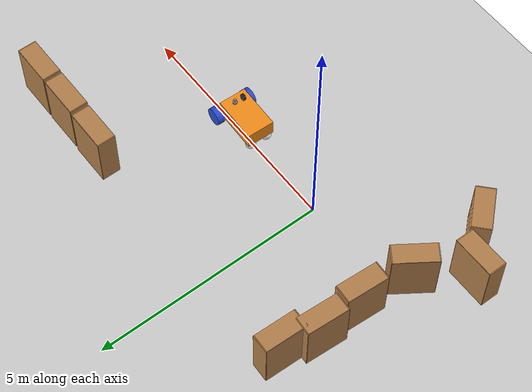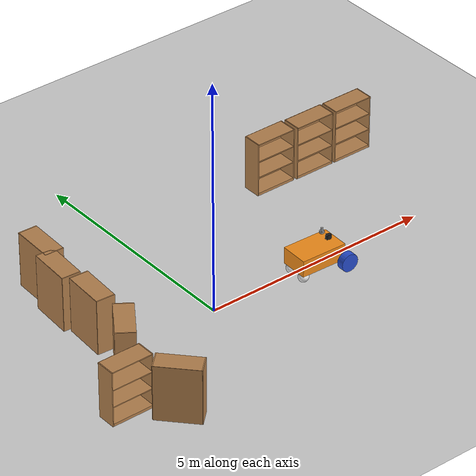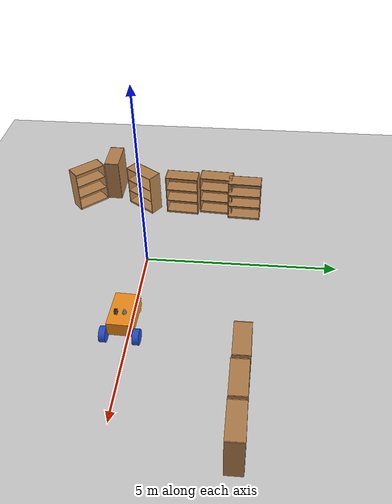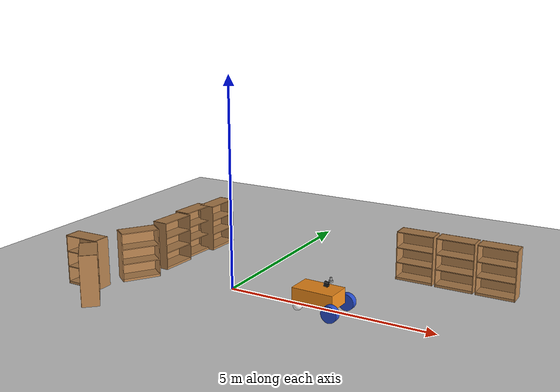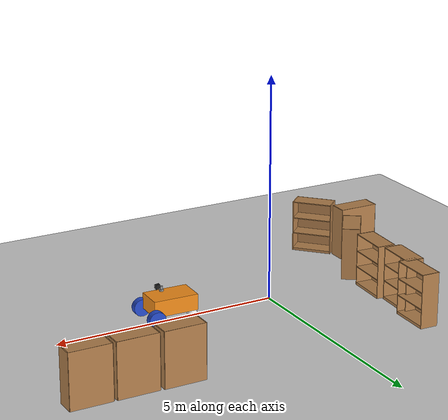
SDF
<sdf version="1.7">
 <world name="default">
  <light name="sun" type="directional">
   <pose>0 0 10 0 -0 0</pose>
   <diffuse>0.8 0.8 0.8 1</diffuse>
   <specular>0.2 0.2 0.2 1</specular>
   <attenuation>
    <range>1000</range>
    <constant>0.9</constant>
    <linear>0.01</linear>
    <quadratic>0.001</quadratic>
   </attenuation>
   <direction>-0.5 0.1 -0.9</direction>
   <spot><inner_angle>0</inner_angle><outer_angle>0</outer_angle><falloff>0</falloff></spot>
  </light>
  <model name="ground_plane">
   <static>1</static>
   <link name="link">
    <collision name="collision">
     <geometry><plane><normal>0 0 1</normal><size>100 100</size></plane></geometry>
     <surface>
      <contact><collide_bitmask>65535</collide_bitmask></contact>
      <friction><ode><mu>100</mu><mu2>50</mu2></ode></friction>
     </surface>
    </collision>
    <visual name="visual">
     <cast_shadows>0</cast_shadows>
     <geometry><plane><normal>0 0 1</normal><size>100 100</size></plane></geometry>
     <material>
      <script><uri>file://media/materials/scripts/gazebo.material</uri><name>Gazebo/Grey</name></script>
     </material>
    </visual>
   </link>
  </model>
  <gravity>0 0 -9.8</gravity>
  <magnetic_field>6e-06 2.3e-05 -4.2e-05</magnetic_field>
  <atmosphere type="adiabatic"/>
  <physics type="ode">
   <max_step_size>0.001</max_step_size>
   <real_time_factor>1</real_time_factor>
   <real_time_update_rate>1000</real_time_update_rate>
  </physics>
  <scene><ambient>0.4 0.4 0.4 1</ambient><background>0.7 0.7 0.7 1</background><shadows>1</shadows></scene>
  <audio><device>default</device></audio>
  <spherical_coordinates>
   <surface_model>EARTH_WGS84</surface_model>
   <latitude_deg>0</latitude_deg>
   <longitude_deg>0</longitude_deg>
   <elevation>0</elevation>
   <heading_deg>0</heading_deg>
  </spherical_coordinates>
  <model name="my_bot">
   <link name="base_link">
    <inertial>
     <pose>-0.799122 0.002329 -0.16546 0 -0 0</pose>
     <mass>4.293</mass>
     <inertia>
      <ixx>0.249458</ixx>
      <ixy>-0.00549122</ixy>
      <ixz>-0.110719</ixz>
      <iyy>0.348442</iyy>
      <iyz>-0.0052546</iyz>
      <izz>0.401025</izz>
     </inertia>
    </inertial>
    <collision name="base_link_fixed_joint_lump__caster_wheel1_collision">
     <pose>-0.91 0.1875 -0.24 0 -0 0</pose>
     <geometry><sphere><radius>0.11</radius></sphere></geometry>
     <surface><friction><ode><mu>0.001</mu><mu2>0.001</mu2></ode></friction></surface>
    </collision>
    <collision name="base_link_fixed_joint_lump__caster_wheel2_collision_1">
     <pose>-0.91 -0.1875 -0.24 0 -0 0</pose>
     <geometry><sphere><radius>0.11</radius></sphere></geometry>
     <surface><friction><ode><mu>0.001</mu><mu2>0.001</mu2></ode></friction></surface>
    </collision>
    <collision name="base_link_fixed_joint_lump__chassis_collision_2">
     <pose>-0.5 0 0.02 0 -0 0</pose>
     <geometry><box><size>1 0.6 0.36</size></box></geometry>
    </collision>
    <collision name="base_link_fixed_joint_lump__laser_frame_collision_3">
     <pose>-0.25 0.1 0.36 0 -0 3.14159</pose>
     <geometry><cylinder><length>0.04</length><radius>0.05</radius></cylinder></geometry>
    </collision>
    <visual name="base_link_fixed_joint_lump__caster_wheel1_visual">
     <pose>-0.91 0.1875 -0.24 0 -0 0</pose>
     <geometry><sphere><radius>0.11</radius></sphere></geometry>
     <material>
      <script><name>Gazebo/White</name><uri>file://media/materials/scripts/gazebo.material</uri></script>
     </material>
    </visual>
    <visual name="base_link_fixed_joint_lump__caster_wheel2_visual_1">
     <pose>-0.91 -0.1875 -0.24 0 -0 0</pose>
     <geometry><sphere><radius>0.11</radius></sphere></geometry>
     <material>
      <script><name>Gazebo/White</name><uri>file://media/materials/scripts/gazebo.material</uri></script>
     </material>
    </visual>
    <visual name="base_link_fixed_joint_lump__chassis_visual_2">
     <pose>-0.5 0 0.02 0 -0 0</pose>
     <geometry><box><size>1 0.6 0.36</size></box></geometry>
     <material>
      <script><name>Gazebo/Orange</name><uri>file://media/materials/scripts/gazebo.material</uri></script>
     </material>
    </visual>
    <visual name="base_link_fixed_joint_lump__camera_link_visual_3">
     <pose>-0.25 -0.1 0.36 0 0.15708 0</pose>
     <geometry><box><size>0.1 0.07 0.1</size></box></geometry>
     <material>
      <script><name>Gazebo/Black</name><uri>file://media/materials/scripts/gazebo.material</uri></script>
     </material>
    </visual>
    <visual name="base_link_fixed_joint_lump__camera_link_visual_4">
     <pose>-0.200616 -0.1 0.352178 3.14159 1.41372 3.14159</pose>
     <geometry><cylinder><length>0.03</length><radius>0.02</radius></cylinder></geometry>
     <material>
      <script><name>Gazebo/Black</name><uri>file://media/materials/scripts/gazebo.material</uri></script>
     </material>
    </visual>
    <visual name="base_link_fixed_joint_lump__laser_frame_visual_5">
     <pose>-0.25 0.1 0.36 0 -0 3.14159</pose>
     <geometry><cylinder><length>0.04</length><radius>0.05</radius></cylinder></geometry>
     <material>
      <script><name>Gazebo/Gray</name><uri>file://media/materials/scripts/gazebo.material</uri></script>
     </material>
    </visual>
    <visual name="base_link_fixed_joint_lump__laser_frame_visual_6">
     <pose>-0.25 0.1 0.4 0 -0 3.14159</pose>
     <geometry><cylinder><length>0.1</length><radius>0.025</radius></cylinder></geometry>
     <material>
      <script><name>Gazebo/Gray</name><uri>file://media/materials/scripts/gazebo.material</uri></script>
     </material>
    </visual>
    <sensor name="camera" type="camera">
     <visualize>1</visualize>
     <update_rate>10</update_rate>
     <camera>
      <horizontal_fov>1.089</horizontal_fov>
      <image><format>R8G8B8</format><width>640</width><height>480</height></image>
      <clip><near>0.05</near><far>8</far></clip>
     </camera>
     <plugin name="camera_controller" filename="libgazebo_ros_camera.so">
      <frame_name>camera_link_optical</frame_name>
      <camera_name>sim_camera</camera_name>
      <topic>image_raw</topic>
     </plugin>
     <pose>-0.25 -0.1 0.36 0 0.15708 0</pose>
    </sensor>
    <sensor name="laser" type="ray">
     <visualize>1</visualize>
     <update_rate>10</update_rate>
     <ray>
      <scan>
       <horizontal>
        <samples>360</samples>
        <min_angle>-3.14</min_angle>
        <max_angle>3.14</max_angle>
        <resolution>1</resolution>
       </horizontal>
       <vertical><samples>1</samples><min_angle>0</min_angle><max_angle>0</max_angle></vertical>
      </scan>
      <range><min>0.3</min><max>12</max></range>
     </ray>
     <plugin name="laser_controller" filename="libgazebo_ros_ray_sensor.so">
      <ros><argument>~/out:=scan</argument></ros>
      <output_type>sensor_msgs/LaserScan</output_type>
      <frame_name>laser_frame</frame_name>
     </plugin>
     <pose>-0.25 0.1 0.36 0 -0 3.14159</pose>
    </sensor>
   </link>
   <joint name="left_wheel_joint" type="revolute">
    <pose relative_to="base_link">0 -0.39 -0.16 -1.5708 0 0</pose>
    <parent>base_link</parent>
    <child>left_wheel</child>
    <axis>
     <xyz>0 0 1</xyz>
     <limit><lower>-1e+16</lower><upper>1e+16</upper></limit>
     <dynamics><spring_reference>0</spring_reference><spring_stiffness>0</spring_stiffness></dynamics>
    </axis>
   </joint>
   <link name="left_wheel">
    <pose relative_to="left_wheel_joint">0 0 0 0 -0 0</pose>
    <inertial>
     <mass>3.17</mass>
     <inertia>
      <ixx>0.034553</ixx>
      <ixy>0</ixy>
      <ixz>0</ixz>
      <iyy>0.034553</iyy>
      <iyz>0</iyz>
      <izz>0.0572185</izz>
     </inertia>
    </inertial>
    <collision name="left_wheel_collision">
     <geometry><cylinder><length>0.15</length><radius>0.19</radius></cylinder></geometry>
    </collision>
    <visual name="left_wheel_visual">
     <geometry><cylinder><length>0.15</length><radius>0.19</radius></cylinder></geometry>
     <material>
      <script><name>Gazebo/Blue</name><uri>file://media/materials/scripts/gazebo.material</uri></script>
     </material>
    </visual>
   </link>
   <joint name="right_wheel_joint" type="revolute">
    <pose relative_to="base_link">0 0.39 -0.16 1.5708 -0 0</pose>
    <parent>base_link</parent>
    <child>right_wheel</child>
    <axis>
     <xyz>0 0 -1</xyz>
     <limit><lower>-1e+16</lower><upper>1e+16</upper></limit>
     <dynamics><spring_reference>0</spring_reference><spring_stiffness>0</spring_stiffness></dynamics>
    </axis>
   </joint>
   <link name="right_wheel">
    <pose relative_to="right_wheel_joint">0 0 0 0 -0 0</pose>
    <inertial>
     <mass>3.17</mass>
     <inertia>
      <ixx>0.034553</ixx>
      <ixy>0</ixy>
      <ixz>0</ixz>
      <iyy>0.034553</iyy>
      <iyz>0</iyz>
      <izz>0.0572185</izz>
     </inertia>
    </inertial>
    <collision name="right_wheel_collision">
     <geometry><cylinder><length>0.15</length><radius>0.19</radius></cylinder></geometry>
    </collision>
    <visual name="right_wheel_visual">
     <geometry><cylinder><length>0.15</length><radius>0.19</radius></cylinder></geometry>
     <material>
      <script><name>Gazebo/Blue</name><uri>file://media/materials/scripts/gazebo.material</uri></script>
     </material>
    </visual>
   </link>
   <static>0</static>
   <plugin name="gazebo_ros2_control" filename="libgazebo_ros2_control.so">
    <parameters>/home/dion/dev_ws/install/articubot_one/share/articubot_one/config/my_controllers.yaml</parameters>
    <parameters>/home/dion/dev_ws/install/articubot_one/share/articubot_one/config/gaz_ros2_ctl_use_sim.yaml</parameters>
   </plugin>
   <pose>2.83557 -0.156018 0.35 0 -1.1e-05 -0.03382</pose>
  </model>
  <model name="bookshelf">
   <static>1</static>
   <link name="link">
    <inertial><mass>1</mass></inertial>
    <collision name="back">
     <pose>0 0.005 0.6 0 -0 0</pose>
     <geometry><box><size>0.9 0.01 1.2</size></box></geometry>
    </collision>
    <visual name="visual1">
     <pose>0 0.005 0.6 0 -0 0</pose>
     <geometry><box><size>0.9 0.01 1.2</size></box></geometry>
     <material>
      <script><uri>file://media/materials/scripts/gazebo.material</uri><name>Gazebo/Wood</name></script>
     </material>
    </visual>
    <collision name="left_side">
     <pose>0.45 -0.195 0.6 0 -0 0</pose>
     <geometry><box><size>0.02 0.4 1.2</size></box></geometry>
    </collision>
    <visual name="visual2">
     <pose>0.45 -0.195 0.6 0 -0 0</pose>
     <geometry><box><size>0.02 0.4 1.2</size></box></geometry>
     <material>
      <script><uri>file://media/materials/scripts/gazebo.material</uri><name>Gazebo/Wood</name></script>
     </material>
    </visual>
    <collision name="right_side">
     <pose>-0.45 -0.195 0.6 0 -0 0</pose>
     <geometry><box><size>0.02 0.4 1.2</size></box></geometry>
    </collision>
    <visual name="visual3">
     <pose>-0.45 -0.195 0.6 0 -0 0</pose>
     <geometry><box><size>0.02 0.4 1.2</size></box></geometry>
     <material>
      <script><uri>file://media/materials/scripts/gazebo.material</uri><name>Gazebo/Wood</name></script>
     </material>
    </visual>
    <collision name="bottom">
     <pose>0 -0.195 0.03 0 -0 0</pose>
     <geometry><box><size>0.88 0.4 0.06</size></box></geometry>
    </collision>
    <visual name="visual4">
     <pose>0 -0.195 0.03 0 -0 0</pose>
     <geometry><box><size>0.88 0.4 0.06</size></box></geometry>
     <material>
      <script><uri>file://media/materials/scripts/gazebo.material</uri><name>Gazebo/Wood</name></script>
     </material>
    </visual>
    <collision name="top">
     <pose>0 -0.195 1.19 0 -0 0</pose>
     <geometry><box><size>0.88 0.4 0.02</size></box></geometry>
    </collision>
    <visual name="visual5">
     <pose>0 -0.195 1.19 0 -0 0</pose>
     <geometry><box><size>0.88 0.4 0.02</size></box></geometry>
     <material>
      <script><uri>file://media/materials/scripts/gazebo.material</uri><name>Gazebo/Wood</name></script>
     </material>
    </visual>
    <collision name="low_shelf">
     <pose>0 -0.195 0.43 0 -0 0</pose>
     <geometry><box><size>0.88 0.4 0.02</size></box></geometry>
    </collision>
    <visual name="visual6">
     <pose>0 -0.195 0.43 0 -0 0</pose>
     <geometry><box><size>0.88 0.4 0.02</size></box></geometry>
     <material>
      <script><uri>file://media/materials/scripts/gazebo.material</uri><name>Gazebo/Wood</name></script>
     </material>
    </visual>
    <collision name="high_shelf">
     <pose>0 -0.195 0.8 0 -0 0</pose>
     <geometry><box><size>0.88 0.4 0.02</size></box></geometry>
    </collision>
    <visual name="visual7">
     <pose>0 -0.195 0.8 0 -0 0</pose>
     <geometry><box><size>0.88 0.4 0.02</size></box></geometry>
     <material>
      <script><uri>file://media/materials/scripts/gazebo.material</uri><name>Gazebo/Wood</name></script>
     </material>
    </visual>
   </link>
   <pose>3.53383 2.86106 0 0 -0 0</pose>
  </model>
  <model name="bookshelf_0">
   <static>1</static>
   <link name="link">
    <inertial><mass>1</mass></inertial>
    <collision name="back">
     <pose>0 0.005 0.6 0 -0 0</pose>
     <geometry><box><size>0.9 0.01 1.2</size></box></geometry>
    </collision>
    <visual name="visual1">
     <pose>0 0.005 0.6 0 -0 0</pose>
     <geometry><box><size>0.9 0.01 1.2</size></box></geometry>
     <material>
      <script><uri>file://media/materials/scripts/gazebo.material</uri><name>Gazebo/Wood</name></script>
     </material>
    </visual>
    <collision name="left_side">
     <pose>0.45 -0.195 0.6 0 -0 0</pose>
     <geometry><box><size>0.02 0.4 1.2</size></box></geometry>
    </collision>
    <visual name="visual2">
     <pose>0.45 -0.195 0.6 0 -0 0</pose>
     <geometry><box><size>0.02 0.4 1.2</size></box></geometry>
     <material>
      <script><uri>file://media/materials/scripts/gazebo.material</uri><name>Gazebo/Wood</name></script>
     </material>
    </visual>
    <collision name="right_side">
     <pose>-0.45 -0.195 0.6 0 -0 0</pose>
     <geometry><box><size>0.02 0.4 1.2</size></box></geometry>
    </collision>
    <visual name="visual3">
     <pose>-0.45 -0.195 0.6 0 -0 0</pose>
     <geometry><box><size>0.02 0.4 1.2</size></box></geometry>
     <material>
      <script><uri>file://media/materials/scripts/gazebo.material</uri><name>Gazebo/Wood</name></script>
     </material>
    </visual>
    <collision name="bottom">
     <pose>0 -0.195 0.03 0 -0 0</pose>
     <geometry><box><size>0.88 0.4 0.06</size></box></geometry>
    </collision>
    <visual name="visual4">
     <pose>0 -0.195 0.03 0 -0 0</pose>
     <geometry><box><size>0.88 0.4 0.06</size></box></geometry>
     <material>
      <script><uri>file://media/materials/scripts/gazebo.material</uri><name>Gazebo/Wood</name></script>
     </material>
    </visual>
    <collision name="top">
     <pose>0 -0.195 1.19 0 -0 0</pose>
     <geometry><box><size>0.88 0.4 0.02</size></box></geometry>
    </collision>
    <visual name="visual5">
     <pose>0 -0.195 1.19 0 -0 0</pose>
     <geometry><box><size>0.88 0.4 0.02</size></box></geometry>
     <material>
      <script><uri>file://media/materials/scripts/gazebo.material</uri><name>Gazebo/Wood</name></script>
     </material>
    </visual>
    <collision name="low_shelf">
     <pose>0 -0.195 0.43 0 -0 0</pose>
     <geometry><box><size>0.88 0.4 0.02</size></box></geometry>
    </collision>
    <visual name="visual6">
     <pose>0 -0.195 0.43 0 -0 0</pose>
     <geometry><box><size>0.88 0.4 0.02</size></box></geometry>
     <material>
      <script><uri>file://media/materials/scripts/gazebo.material</uri><name>Gazebo/Wood</name></script>
     </material>
    </visual>
    <collision name="high_shelf">
     <pose>0 -0.195 0.8 0 -0 0</pose>
     <geometry><box><size>0.88 0.4 0.02</size></box></geometry>
    </collision>
    <visual name="visual7">
     <pose>0 -0.195 0.8 0 -0 0</pose>
     <geometry><box><size>0.88 0.4 0.02</size></box></geometry>
     <material>
      <script><uri>file://media/materials/scripts/gazebo.material</uri><name>Gazebo/Wood</name></script>
     </material>
    </visual>
   </link>
   <pose>4.51781 2.84364 0 0 -0 0</pose>
  </model>
  <model name="bookshelf_1">
   <static>1</static>
   <link name="link">
    <inertial><mass>1</mass></inertial>
    <collision name="back">
     <pose>0 0.005 0.6 0 -0 0</pose>
     <geometry><box><size>0.9 0.01 1.2</size></box></geometry>
    </collision>
    <visual name="visual1">
     <pose>0 0.005 0.6 0 -0 0</pose>
     <geometry><box><size>0.9 0.01 1.2</size></box></geometry>
     <material>
      <script><uri>file://media/materials/scripts/gazebo.material</uri><name>Gazebo/Wood</name></script>
     </material>
    </visual>
    <collision name="left_side">
     <pose>0.45 -0.195 0.6 0 -0 0</pose>
     <geometry><box><size>0.02 0.4 1.2</size></box></geometry>
    </collision>
    <visual name="visual2">
     <pose>0.45 -0.195 0.6 0 -0 0</pose>
     <geometry><box><size>0.02 0.4 1.2</size></box></geometry>
     <material>
      <script><uri>file://media/materials/scripts/gazebo.material</uri><name>Gazebo/Wood</name></script>
     </material>
    </visual>
    <collision name="right_side">
     <pose>-0.45 -0.195 0.6 0 -0 0</pose>
     <geometry><box><size>0.02 0.4 1.2</size></box></geometry>
    </collision>
    <visual name="visual3">
     <pose>-0.45 -0.195 0.6 0 -0 0</pose>
     <geometry><box><size>0.02 0.4 1.2</size></box></geometry>
     <material>
      <script><uri>file://media/materials/scripts/gazebo.material</uri><name>Gazebo/Wood</name></script>
     </material>
    </visual>
    <collision name="bottom">
     <pose>0 -0.195 0.03 0 -0 0</pose>
     <geometry><box><size>0.88 0.4 0.06</size></box></geometry>
    </collision>
    <visual name="visual4">
     <pose>0 -0.195 0.03 0 -0 0</pose>
     <geometry><box><size>0.88 0.4 0.06</size></box></geometry>
     <material>
      <script><uri>file://media/materials/scripts/gazebo.material</uri><name>Gazebo/Wood</name></script>
     </material>
    </visual>
    <collision name="top">
     <pose>0 -0.195 1.19 0 -0 0</pose>
     <geometry><box><size>0.88 0.4 0.02</size></box></geometry>
    </collision>
    <visual name="visual5">
     <pose>0 -0.195 1.19 0 -0 0</pose>
     <geometry><box><size>0.88 0.4 0.02</size></box></geometry>
     <material>
      <script><uri>file://media/materials/scripts/gazebo.material</uri><name>Gazebo/Wood</name></script>
     </material>
    </visual>
    <collision name="low_shelf">
     <pose>0 -0.195 0.43 0 -0 0</pose>
     <geometry><box><size>0.88 0.4 0.02</size></box></geometry>
    </collision>
    <visual name="visual6">
     <pose>0 -0.195 0.43 0 -0 0</pose>
     <geometry><box><size>0.88 0.4 0.02</size></box></geometry>
     <material>
      <script><uri>file://media/materials/scripts/gazebo.material</uri><name>Gazebo/Wood</name></script>
     </material>
    </visual>
    <collision name="high_shelf">
     <pose>0 -0.195 0.8 0 -0 0</pose>
     <geometry><box><size>0.88 0.4 0.02</size></box></geometry>
    </collision>
    <visual name="visual7">
     <pose>0 -0.195 0.8 0 -0 0</pose>
     <geometry><box><size>0.88 0.4 0.02</size></box></geometry>
     <material>
      <script><uri>file://media/materials/scripts/gazebo.material</uri><name>Gazebo/Wood</name></script>
     </material>
    </visual>
   </link>
   <pose>5.48931 2.8378 0 0 -0 0</pose>
  </model>
  <model name="bookshelf_2">
   <static>1</static>
   <link name="link">
    <inertial><mass>1</mass></inertial>
    <collision name="back">
     <pose>0 0.005 0.6 0 -0 0</pose>
     <geometry><box><size>0.9 0.01 1.2</size></box></geometry>
    </collision>
    <visual name="visual1">
     <pose>0 0.005 0.6 0 -0 0</pose>
     <geometry><box><size>0.9 0.01 1.2</size></box></geometry>
     <material>
      <script><uri>file://media/materials/scripts/gazebo.material</uri><name>Gazebo/Wood</name></script>
     </material>
    </visual>
    <collision name="left_side">
     <pose>0.45 -0.195 0.6 0 -0 0</pose>
     <geometry><box><size>0.02 0.4 1.2</size></box></geometry>
    </collision>
    <visual name="visual2">
     <pose>0.45 -0.195 0.6 0 -0 0</pose>
     <geometry><box><size>0.02 0.4 1.2</size></box></geometry>
     <material>
      <script><uri>file://media/materials/scripts/gazebo.material</uri><name>Gazebo/Wood</name></script>
     </material>
    </visual>
    <collision name="right_side">
     <pose>-0.45 -0.195 0.6 0 -0 0</pose>
     <geometry><box><size>0.02 0.4 1.2</size></box></geometry>
    </collision>
    <visual name="visual3">
     <pose>-0.45 -0.195 0.6 0 -0 0</pose>
     <geometry><box><size>0.02 0.4 1.2</size></box></geometry>
     <material>
      <script><uri>file://media/materials/scripts/gazebo.material</uri><name>Gazebo/Wood</name></script>
     </material>
    </visual>
    <collision name="bottom">
     <pose>0 -0.195 0.03 0 -0 0</pose>
     <geometry><box><size>0.88 0.4 0.06</size></box></geometry>
    </collision>
    <visual name="visual4">
     <pose>0 -0.195 0.03 0 -0 0</pose>
     <geometry><box><size>0.88 0.4 0.06</size></box></geometry>
     <material>
      <script><uri>file://media/materials/scripts/gazebo.material</uri><name>Gazebo/Wood</name></script>
     </material>
    </visual>
    <collision name="top">
     <pose>0 -0.195 1.19 0 -0 0</pose>
     <geometry><box><size>0.88 0.4 0.02</size></box></geometry>
    </collision>
    <visual name="visual5">
     <pose>0 -0.195 1.19 0 -0 0</pose>
     <geometry><box><size>0.88 0.4 0.02</size></box></geometry>
     <material>
      <script><uri>file://media/materials/scripts/gazebo.material</uri><name>Gazebo/Wood</name></script>
     </material>
    </visual>
    <collision name="low_shelf">
     <pose>0 -0.195 0.43 0 -0 0</pose>
     <geometry><box><size>0.88 0.4 0.02</size></box></geometry>
    </collision>
    <visual name="visual6">
     <pose>0 -0.195 0.43 0 -0 0</pose>
     <geometry><box><size>0.88 0.4 0.02</size></box></geometry>
     <material>
      <script><uri>file://media/materials/scripts/gazebo.material</uri><name>Gazebo/Wood</name></script>
     </material>
    </visual>
    <collision name="high_shelf">
     <pose>0 -0.195 0.8 0 -0 0</pose>
     <geometry><box><size>0.88 0.4 0.02</size></box></geometry>
    </collision>
    <visual name="visual7">
     <pose>0 -0.195 0.8 0 -0 0</pose>
     <geometry><box><size>0.88 0.4 0.02</size></box></geometry>
     <material>
      <script><uri>file://media/materials/scripts/gazebo.material</uri><name>Gazebo/Wood</name></script>
     </material>
    </visual>
   </link>
   <pose>-2.3333 2.4926 0 0 -0 1.53434</pose>
  </model>
  <model name="bookshelf_3">
   <static>1</static>
   <link name="link">
    <inertial><mass>1</mass></inertial>
    <collision name="back">
     <pose>0 0.005 0.6 0 -0 0</pose>
     <geometry><box><size>0.9 0.01 1.2</size></box></geometry>
    </collision>
    <visual name="visual1">
     <pose>0 0.005 0.6 0 -0 0</pose>
     <geometry><box><size>0.9 0.01 1.2</size></box></geometry>
     <material>
      <script><uri>file://media/materials/scripts/gazebo.material</uri><name>Gazebo/Wood</name></script>
     </material>
    </visual>
    <collision name="left_side">
     <pose>0.45 -0.195 0.6 0 -0 0</pose>
     <geometry><box><size>0.02 0.4 1.2</size></box></geometry>
    </collision>
    <visual name="visual2">
     <pose>0.45 -0.195 0.6 0 -0 0</pose>
     <geometry><box><size>0.02 0.4 1.2</size></box></geometry>
     <material>
      <script><uri>file://media/materials/scripts/gazebo.material</uri><name>Gazebo/Wood</name></script>
     </material>
    </visual>
    <collision name="right_side">
     <pose>-0.45 -0.195 0.6 0 -0 0</pose>
     <geometry><box><size>0.02 0.4 1.2</size></box></geometry>
    </collision>
    <visual name="visual3">
     <pose>-0.45 -0.195 0.6 0 -0 0</pose>
     <geometry><box><size>0.02 0.4 1.2</size></box></geometry>
     <material>
      <script><uri>file://media/materials/scripts/gazebo.material</uri><name>Gazebo/Wood</name></script>
     </material>
    </visual>
    <collision name="bottom">
     <pose>0 -0.195 0.03 0 -0 0</pose>
     <geometry><box><size>0.88 0.4 0.06</size></box></geometry>
    </collision>
    <visual name="visual4">
     <pose>0 -0.195 0.03 0 -0 0</pose>
     <geometry><box><size>0.88 0.4 0.06</size></box></geometry>
     <material>
      <script><uri>file://media/materials/scripts/gazebo.material</uri><name>Gazebo/Wood</name></script>
     </material>
    </visual>
    <collision name="top">
     <pose>0 -0.195 1.19 0 -0 0</pose>
     <geometry><box><size>0.88 0.4 0.02</size></box></geometry>
    </collision>
    <visual name="visual5">
     <pose>0 -0.195 1.19 0 -0 0</pose>
     <geometry><box><size>0.88 0.4 0.02</size></box></geometry>
     <material>
      <script><uri>file://media/materials/scripts/gazebo.material</uri><name>Gazebo/Wood</name></script>
     </material>
    </visual>
    <collision name="low_shelf">
     <pose>0 -0.195 0.43 0 -0 0</pose>
     <geometry><box><size>0.88 0.4 0.02</size></box></geometry>
    </collision>
    <visual name="visual6">
     <pose>0 -0.195 0.43 0 -0 0</pose>
     <geometry><box><size>0.88 0.4 0.02</size></box></geometry>
     <material>
      <script><uri>file://media/materials/scripts/gazebo.material</uri><name>Gazebo/Wood</name></script>
     </material>
    </visual>
    <collision name="high_shelf">
     <pose>0 -0.195 0.8 0 -0 0</pose>
     <geometry><box><size>0.88 0.4 0.02</size></box></geometry>
    </collision>
    <visual name="visual7">
     <pose>0 -0.195 0.8 0 -0 0</pose>
     <geometry><box><size>0.88 0.4 0.02</size></box></geometry>
     <material>
      <script><uri>file://media/materials/scripts/gazebo.material</uri><name>Gazebo/Wood</name></script>
     </material>
    </visual>
   </link>
   <pose>-2.52593 1.69276 0 0 -0 1.50582</pose>
  </model>
  <model name="bookshelf_4">
   <static>1</static>
   <link name="link">
    <inertial><mass>1</mass></inertial>
    <collision name="back">
     <pose>0 0.005 0.6 0 -0 0</pose>
     <geometry><box><size>0.9 0.01 1.2</size></box></geometry>
    </collision>
    <visual name="visual1">
     <pose>0 0.005 0.6 0 -0 0</pose>
     <geometry><box><size>0.9 0.01 1.2</size></box></geometry>
     <material>
      <script><uri>file://media/materials/scripts/gazebo.material</uri><name>Gazebo/Wood</name></script>
     </material>
    </visual>
    <collision name="left_side">
     <pose>0.45 -0.195 0.6 0 -0 0</pose>
     <geometry><box><size>0.02 0.4 1.2</size></box></geometry>
    </collision>
    <visual name="visual2">
     <pose>0.45 -0.195 0.6 0 -0 0</pose>
     <geometry><box><size>0.02 0.4 1.2</size></box></geometry>
     <material>
      <script><uri>file://media/materials/scripts/gazebo.material</uri><name>Gazebo/Wood</name></script>
     </material>
    </visual>
    <collision name="right_side">
     <pose>-0.45 -0.195 0.6 0 -0 0</pose>
     <geometry><box><size>0.02 0.4 1.2</size></box></geometry>
    </collision>
    <visual name="visual3">
     <pose>-0.45 -0.195 0.6 0 -0 0</pose>
     <geometry><box><size>0.02 0.4 1.2</size></box></geometry>
     <material>
      <script><uri>file://media/materials/scripts/gazebo.material</uri><name>Gazebo/Wood</name></script>
     </material>
    </visual>
    <collision name="bottom">
     <pose>0 -0.195 0.03 0 -0 0</pose>
     <geometry><box><size>0.88 0.4 0.06</size></box></geometry>
    </collision>
    <visual name="visual4">
     <pose>0 -0.195 0.03 0 -0 0</pose>
     <geometry><box><size>0.88 0.4 0.06</size></box></geometry>
     <material>
      <script><uri>file://media/materials/scripts/gazebo.material</uri><name>Gazebo/Wood</name></script>
     </material>
    </visual>
    <collision name="top">
     <pose>0 -0.195 1.19 0 -0 0</pose>
     <geometry><box><size>0.88 0.4 0.02</size></box></geometry>
    </collision>
    <visual name="visual5">
     <pose>0 -0.195 1.19 0 -0 0</pose>
     <geometry><box><size>0.88 0.4 0.02</size></box></geometry>
     <material>
      <script><uri>file://media/materials/scripts/gazebo.material</uri><name>Gazebo/Wood</name></script>
     </material>
    </visual>
    <collision name="low_shelf">
     <pose>0 -0.195 0.43 0 -0 0</pose>
     <geometry><box><size>0.88 0.4 0.02</size></box></geometry>
    </collision>
    <visual name="visual6">
     <pose>0 -0.195 0.43 0 -0 0</pose>
     <geometry><box><size>0.88 0.4 0.02</size></box></geometry>
     <material>
      <script><uri>file://media/materials/scripts/gazebo.material</uri><name>Gazebo/Wood</name></script>
     </material>
    </visual>
    <collision name="high_shelf">
     <pose>0 -0.195 0.8 0 -0 0</pose>
     <geometry><box><size>0.88 0.4 0.02</size></box></geometry>
    </collision>
    <visual name="visual7">
     <pose>0 -0.195 0.8 0 -0 0</pose>
     <geometry><box><size>0.88 0.4 0.02</size></box></geometry>
     <material>
      <script><uri>file://media/materials/scripts/gazebo.material</uri><name>Gazebo/Wood</name></script>
     </material>
    </visual>
   </link>
   <pose>-2.46567 0.720951 0 0 -0 1.50711</pose>
  </model>
  <model name="bookshelf_5">
   <static>1</static>
   <link name="link">
    <inertial><mass>1</mass></inertial>
    <collision name="back">
     <pose>0 0.005 0.6 0 -0 0</pose>
     <geometry><box><size>0.9 0.01 1.2</size></box></geometry>
    </collision>
    <visual name="visual1">
     <pose>0 0.005 0.6 0 -0 0</pose>
     <geometry><box><size>0.9 0.01 1.2</size></box></geometry>
     <material>
      <script><uri>file://media/materials/scripts/gazebo.material</uri><name>Gazebo/Wood</name></script>
     </material>
    </visual>
    <collision name="left_side">
     <pose>0.45 -0.195 0.6 0 -0 0</pose>
     <geometry><box><size>0.02 0.4 1.2</size></box></geometry>
    </collision>
    <visual name="visual2">
     <pose>0.45 -0.195 0.6 0 -0 0</pose>
     <geometry><box><size>0.02 0.4 1.2</size></box></geometry>
     <material>
      <script><uri>file://media/materials/scripts/gazebo.material</uri><name>Gazebo/Wood</name></script>
     </material>
    </visual>
    <collision name="right_side">
     <pose>-0.45 -0.195 0.6 0 -0 0</pose>
     <geometry><box><size>0.02 0.4 1.2</size></box></geometry>
    </collision>
    <visual name="visual3">
     <pose>-0.45 -0.195 0.6 0 -0 0</pose>
     <geometry><box><size>0.02 0.4 1.2</size></box></geometry>
     <material>
      <script><uri>file://media/materials/scripts/gazebo.material</uri><name>Gazebo/Wood</name></script>
     </material>
    </visual>
    <collision name="bottom">
     <pose>0 -0.195 0.03 0 -0 0</pose>
     <geometry><box><size>0.88 0.4 0.06</size></box></geometry>
    </collision>
    <visual name="visual4">
     <pose>0 -0.195 0.03 0 -0 0</pose>
     <geometry><box><size>0.88 0.4 0.06</size></box></geometry>
     <material>
      <script><uri>file://media/materials/scripts/gazebo.material</uri><name>Gazebo/Wood</name></script>
     </material>
    </visual>
    <collision name="top">
     <pose>0 -0.195 1.19 0 -0 0</pose>
     <geometry><box><size>0.88 0.4 0.02</size></box></geometry>
    </collision>
    <visual name="visual5">
     <pose>0 -0.195 1.19 0 -0 0</pose>
     <geometry><box><size>0.88 0.4 0.02</size></box></geometry>
     <material>
      <script><uri>file://media/materials/scripts/gazebo.material</uri><name>Gazebo/Wood</name></script>
     </material>
    </visual>
    <collision name="low_shelf">
     <pose>0 -0.195 0.43 0 -0 0</pose>
     <geometry><box><size>0.88 0.4 0.02</size></box></geometry>
    </collision>
    <visual name="visual6">
     <pose>0 -0.195 0.43 0 -0 0</pose>
     <geometry><box><size>0.88 0.4 0.02</size></box></geometry>
     <material>
      <script><uri>file://media/materials/scripts/gazebo.material</uri><name>Gazebo/Wood</name></script>
     </material>
    </visual>
    <collision name="high_shelf">
     <pose>0 -0.195 0.8 0 -0 0</pose>
     <geometry><box><size>0.88 0.4 0.02</size></box></geometry>
    </collision>
    <visual name="visual7">
     <pose>0 -0.195 0.8 0 -0 0</pose>
     <geometry><box><size>0.88 0.4 0.02</size></box></geometry>
     <material>
      <script><uri>file://media/materials/scripts/gazebo.material</uri><name>Gazebo/Wood</name></script>
     </material>
    </visual>
   </link>
   <pose>-2.56119 -0.330617 0 0 -0 0.965045</pose>
  </model>
  <model name="bookshelf_6">
   <static>1</static>
   <link name="link">
    <inertial><mass>1</mass></inertial>
    <collision name="back">
     <pose>0 0.005 0.6 0 -0 0</pose>
     <geometry><box><size>0.9 0.01 1.2</size></box></geometry>
    </collision>
    <visual name="visual1">
     <pose>0 0.005 0.6 0 -0 0</pose>
     <geometry><box><size>0.9 0.01 1.2</size></box></geometry>
     <material>
      <script><uri>file://media/materials/scripts/gazebo.material</uri><name>Gazebo/Wood</name></script>
     </material>
    </visual>
    <collision name="left_side">
     <pose>0.45 -0.195 0.6 0 -0 0</pose>
     <geometry><box><size>0.02 0.4 1.2</size></box></geometry>
    </collision>
    <visual name="visual2">
     <pose>0.45 -0.195 0.6 0 -0 0</pose>
     <geometry><box><size>0.02 0.4 1.2</size></box></geometry>
     <material>
      <script><uri>file://media/materials/scripts/gazebo.material</uri><name>Gazebo/Wood</name></script>
     </material>
    </visual>
    <collision name="right_side">
     <pose>-0.45 -0.195 0.6 0 -0 0</pose>
     <geometry><box><size>0.02 0.4 1.2</size></box></geometry>
    </collision>
    <visual name="visual3">
     <pose>-0.45 -0.195 0.6 0 -0 0</pose>
     <geometry><box><size>0.02 0.4 1.2</size></box></geometry>
     <material>
      <script><uri>file://media/materials/scripts/gazebo.material</uri><name>Gazebo/Wood</name></script>
     </material>
    </visual>
    <collision name="bottom">
     <pose>0 -0.195 0.03 0 -0 0</pose>
     <geometry><box><size>0.88 0.4 0.06</size></box></geometry>
    </collision>
    <visual name="visual4">
     <pose>0 -0.195 0.03 0 -0 0</pose>
     <geometry><box><size>0.88 0.4 0.06</size></box></geometry>
     <material>
      <script><uri>file://media/materials/scripts/gazebo.material</uri><name>Gazebo/Wood</name></script>
     </material>
    </visual>
    <collision name="top">
     <pose>0 -0.195 1.19 0 -0 0</pose>
     <geometry><box><size>0.88 0.4 0.02</size></box></geometry>
    </collision>
    <visual name="visual5">
     <pose>0 -0.195 1.19 0 -0 0</pose>
     <geometry><box><size>0.88 0.4 0.02</size></box></geometry>
     <material>
      <script><uri>file://media/materials/scripts/gazebo.material</uri><name>Gazebo/Wood</name></script>
     </material>
    </visual>
    <collision name="low_shelf">
     <pose>0 -0.195 0.43 0 -0 0</pose>
     <geometry><box><size>0.88 0.4 0.02</size></box></geometry>
    </collision>
    <visual name="visual6">
     <pose>0 -0.195 0.43 0 -0 0</pose>
     <geometry><box><size>0.88 0.4 0.02</size></box></geometry>
     <material>
      <script><uri>file://media/materials/scripts/gazebo.material</uri><name>Gazebo/Wood</name></script>
     </material>
    </visual>
    <collision name="high_shelf">
     <pose>0 -0.195 0.8 0 -0 0</pose>
     <geometry><box><size>0.88 0.4 0.02</size></box></geometry>
    </collision>
    <visual name="visual7">
     <pose>0 -0.195 0.8 0 -0 0</pose>
     <geometry><box><size>0.88 0.4 0.02</size></box></geometry>
     <material>
      <script><uri>file://media/materials/scripts/gazebo.material</uri><name>Gazebo/Wood</name></script>
     </material>
    </visual>
   </link>
   <pose>-2.58274 -2.22208 0 0 -0 2.31465</pose>
  </model>
  <model name="bookshelf_7">
   <static>1</static>
   <link name="link">
    <inertial><mass>1</mass></inertial>
    <collision name="back">
     <pose>0 0.005 0.6 0 -0 0</pose>
     <geometry><box><size>0.9 0.01 1.2</size></box></geometry>
    </collision>
    <visual name="visual1">
     <pose>0 0.005 0.6 0 -0 0</pose>
     <geometry><box><size>0.9 0.01 1.2</size></box></geometry>
     <material>
      <script><uri>file://media/materials/scripts/gazebo.material</uri><name>Gazebo/Wood</name></script>
     </material>
    </visual>
    <collision name="left_side">
     <pose>0.45 -0.195 0.6 0 -0 0</pose>
     <geometry><box><size>0.02 0.4 1.2</size></box></geometry>
    </collision>
    <visual name="visual2">
     <pose>0.45 -0.195 0.6 0 -0 0</pose>
     <geometry><box><size>0.02 0.4 1.2</size></box></geometry>
     <material>
      <script><uri>file://media/materials/scripts/gazebo.material</uri><name>Gazebo/Wood</name></script>
     </material>
    </visual>
    <collision name="right_side">
     <pose>-0.45 -0.195 0.6 0 -0 0</pose>
     <geometry><box><size>0.02 0.4 1.2</size></box></geometry>
    </collision>
    <visual name="visual3">
     <pose>-0.45 -0.195 0.6 0 -0 0</pose>
     <geometry><box><size>0.02 0.4 1.2</size></box></geometry>
     <material>
      <script><uri>file://media/materials/scripts/gazebo.material</uri><name>Gazebo/Wood</name></script>
     </material>
    </visual>
    <collision name="bottom">
     <pose>0 -0.195 0.03 0 -0 0</pose>
     <geometry><box><size>0.88 0.4 0.06</size></box></geometry>
    </collision>
    <visual name="visual4">
     <pose>0 -0.195 0.03 0 -0 0</pose>
     <geometry><box><size>0.88 0.4 0.06</size></box></geometry>
     <material>
      <script><uri>file://media/materials/scripts/gazebo.material</uri><name>Gazebo/Wood</name></script>
     </material>
    </visual>
    <collision name="top">
     <pose>0 -0.195 1.19 0 -0 0</pose>
     <geometry><box><size>0.88 0.4 0.02</size></box></geometry>
    </collision>
    <visual name="visual5">
     <pose>0 -0.195 1.19 0 -0 0</pose>
     <geometry><box><size>0.88 0.4 0.02</size></box></geometry>
     <material>
      <script><uri>file://media/materials/scripts/gazebo.material</uri><name>Gazebo/Wood</name></script>
     </material>
    </visual>
    <collision name="low_shelf">
     <pose>0 -0.195 0.43 0 -0 0</pose>
     <geometry><box><size>0.88 0.4 0.02</size></box></geometry>
    </collision>
    <visual name="visual6">
     <pose>0 -0.195 0.43 0 -0 0</pose>
     <geometry><box><size>0.88 0.4 0.02</size></box></geometry>
     <material>
      <script><uri>file://media/materials/scripts/gazebo.material</uri><name>Gazebo/Wood</name></script>
     </material>
    </visual>
    <collision name="high_shelf">
     <pose>0 -0.195 0.8 0 -0 0</pose>
     <geometry><box><size>0.88 0.4 0.02</size></box></geometry>
    </collision>
    <visual name="visual7">
     <pose>0 -0.195 0.8 0 -0 0</pose>
     <geometry><box><size>0.88 0.4 0.02</size></box></geometry>
     <material>
      <script><uri>file://media/materials/scripts/gazebo.material</uri><name>Gazebo/Wood</name></script>
     </material>
    </visual>
   </link>
   <pose>-3.11173 -1.2219 0 0 -0 0</pose>
  </model>
 </world>
</sdf>
